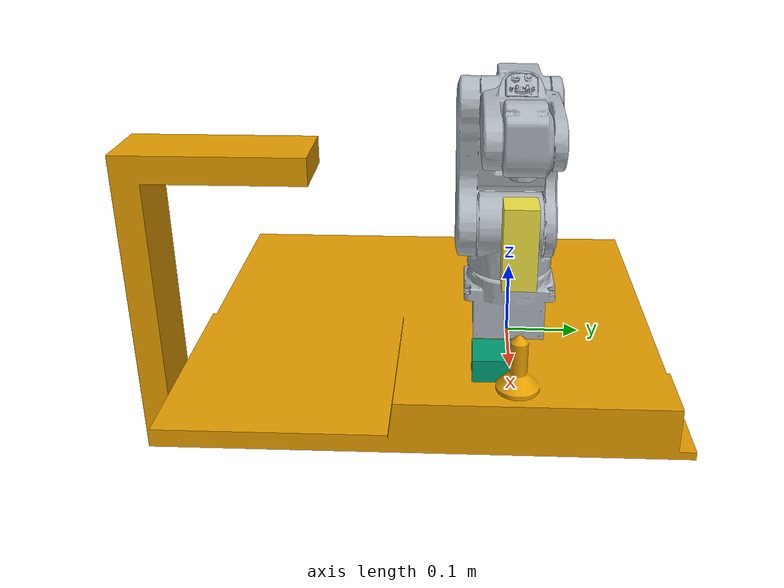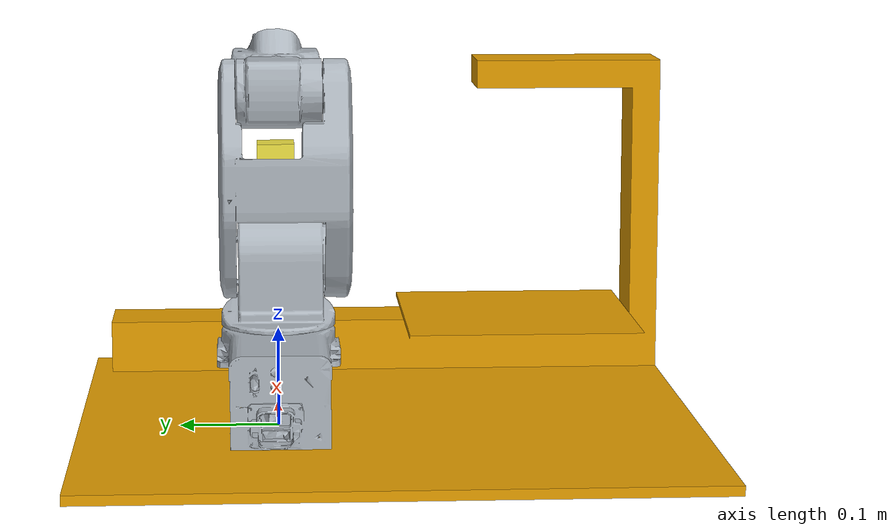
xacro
<?xml version="1.0" encoding="utf-8"?>
<robot name="motoman_motomini"
    xmlns:xacro="http://www.ros.org/wiki/xacro"
    xmlns:tesseract="http://ros.org/wiki/tesseract"
    tesseract:make_convex="true">

    <!-- ========= ARG FIRST ========= -->
    <xacro:arg name="controllers_file" default="" />
    <xacro:property name="controllers_file" value="$(arg controllers_file)" />
    <xacro:arg name="tool_type" default="gripper" />
    <xacro:property name="tool_type" value="$(arg tool_type)" />
    <!-- ========= INCLUDE ROBOT ========= -->
    <xacro:include filename="motoman_motomini.urdf" />
    <xacro:include filename="motoman_motomini_sensors.urdf.xacro" />
    <xacro:include filename="motoman_motomini_tool.xacro" />
    <!-- ========= TOOLS ========= -->
    <xacro:motomini_tool
        parent_link="tool0"
        tool_type="${tool_type}" />
    <!-- ========= WORLD FIX ========= -->
    <link name="world" />

    <joint name="world_to_workcell" type="fixed">
        <parent link="world" />
        <child link="workcell" />
        <origin xyz="0 0 0.068" rpy="0 0 0" />
    </joint>
    <gazebo reference="link_1_s">
        <turnGravityOff>true</turnGravityOff>
    </gazebo>

    <gazebo reference="link_2_l">
        <turnGravityOff>true</turnGravityOff>
    </gazebo>

    <gazebo reference="link_3_u">
        <turnGravityOff>true</turnGravityOff>
    </gazebo>

    <gazebo reference="link_4_r">
        <turnGravityOff>true</turnGravityOff>
    </gazebo>

    <gazebo reference="link_5_b">
        <turnGravityOff>true</turnGravityOff>
    </gazebo>

    <gazebo reference="link_6_t">
        <turnGravityOff>true</turnGravityOff>
    </gazebo>
    <!-- =============== ROS2 CONTROL ===================== -->

    <ros2_control name="MotominiSystem" type="system">
        <hardware>
            <plugin>gz_ros2_control/GazeboSimSystem</plugin>

            <!-- These control Gazebo internal PID -->
            <param name="position_proportional_gain">5000.0</param>
            <param name="position_derivative_gain">50.0</param>

        </hardware>

        <!-- Position control only (simple mode) -->

        <joint name="joint_1_s">
            <command_interface name="position" />
            <state_interface name="position" />
            <state_interface name="velocity" />
        </joint>

        <joint name="joint_2_l">
            <command_interface name="position" />
            <state_interface name="position" />
            <state_interface name="velocity" />
        </joint>

        <joint name="joint_3_u">
            <command_interface name="position" />
            <state_interface name="position" />
            <state_interface name="velocity" />
        </joint>

        <joint name="joint_4_r">
            <command_interface name="position" />
            <state_interface name="position" />
            <state_interface name="velocity" />
        </joint>

        <joint name="joint_5_b">
            <command_interface name="position" />
            <state_interface name="position" />
            <state_interface name="velocity" />
        </joint>

        <joint name="joint_6_t">
            <command_interface name="position" />
            <state_interface name="position" />
            <state_interface name="velocity" />
        </joint>

    </ros2_control>

    <!-- ============== GAZEBO SETTINGS =================== -->

    <gazebo>
        <gravity>false</gravity>
        <plugin
            filename="libgz_ros2_control-system.so"
            name="gz_ros2_control::GazeboSimROS2ControlPlugin">
            <parameters>${controllers_file}</parameters>
        </plugin>
    </gazebo>

</robot>

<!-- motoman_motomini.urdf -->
<robot name="motoman_motomini">
  <!--Generated by RobotCAD, a ROS
  Workbench for FreeCAD (https://github.com/drfenixion/freecad.robotcad)-->
  <link name="workcell">
    <visual>
      <!--visual_world_/Body.-->
      <origin rpy="0 0 0" xyz="0.0 0.0 0.0" />
      <geometry>
        <mesh filename="package://motomini/meshes/workcell.stl" scale="0.001 0.001 0.001"/>
      </geometry>
    </visual>
    <collision>
      <!--col__world__col_Body__BoundBox/col_Body__BoundBox.-->
      <origin rpy="0 0 0" xyz="0.0 0.0 0.0" />
      <geometry>
        <mesh filename="package://motomini/meshes/workcell.stl" scale="0.001 0.001 0.001"/>
      </geometry>
    </collision>

    <inertial>
      <mass value="1.0" />
      <origin xyz="0 0 0" rpy="0 0 0" />
      <inertia ixx="0.01" ixy="0" ixz="0"
        iyy="0.01" iyz="0"
        izz="0.01" />
    </inertial>
  </link>
  <link name="base_link">
    <visual>
      <!--visual_base_link_/base_link_visual.-->
      <origin rpy="0 0 0" xyz="0.0 0.0 0.0" />
      <geometry>
        <mesh filename="package://motomini/meshes/motomini_ws_base_link_stl_xcag4w.dae" />
      </geometry>
    </visual>
    <collision>
      <!--col_base_link_/base_link_collision.-->
      <origin rpy="0 0 0" xyz="0.0 0.0 0.0" />
      <geometry>
        <mesh filename="package://motomini/meshes/motomini_ws_base_link_stl003_aoewun.dae" />
      </geometry>
    </collision>
    <inertial>
      <mass value="0.2957730208625907" />
      <origin rpy="0 0 0" xyz="-0.0414482 0.000680426 -0.00874207" />
      <inertia ixx="0.0006002993385117529" ixy="1.838905003866756e-05" ixz="-0.00013458983394770842"
        iyy="0.0015926668546347553" iyz="5.833475687390483e-06" izz="0.0017336952882501457" />
    </inertial>
  </link>
  <link name="link_1_s">
    <visual>
      <!--visual_link_1_s_/link_1_s_visual.-->
      <origin rpy="0 0 0" xyz="0.0 0.0 0.0" />
      <geometry>
        <mesh filename="package://motomini/meshes/motomini_ws_link_1_s_stl_6j3ein.dae" />
      </geometry>
    </visual>
    <collision>
      <!--col_link_1_s_/link_1_s_collision.-->
      <origin rpy="0 0 0" xyz="0.0 0.0 0.0" />
      <geometry>
        <mesh filename="package://motomini/meshes/motomini_ws_link_1_s_stl003_zj3crt.dae" />
      </geometry>
    </collision>
    <inertial>
      <mass value="0.2702445975347093" />
      <origin rpy="0 0 0" xyz="0.0117154 -0.0180822 -0.0325725" />
      <inertia ixx="0.0006643318166600817" ixy="3.170457948367218e-05" ixz="-9.752049469525281e-05"
        iyy="0.0006007029484641133" iyz="0.00012827517242338014" izz="0.00035835381021736434" />
    </inertial>
  </link>
  <link name="link_2_l">
    <visual>
      <!--visual_link_2_l_/link_2_l_visual.-->
      <origin rpy="1.5707963267948963 0 0" xyz="0.0 0.0 0.0" />
      <geometry>
        <mesh filename="package://motomini/meshes/motomini_ws_link_2_l_stl_ywjtlh.dae" />
      </geometry>
    </visual>
    <collision>
      <!--col_link_2_l_/link_2_l_collision.-->
      <origin rpy="1.5707963267948963 0 0" xyz="0.0 0.0 0.0" />
      <geometry>
        <mesh filename="package://motomini/meshes/motomini_ws_link_2_l_stl003_eufvko.dae" />
      </geometry>
    </collision>
    <inertial>
      <mass value="0.3645826896823147" />
      <origin rpy="1.5707963267948963 0 0" xyz="-0.0156956 -0.0821106 -0.0337352" />
      <inertia ixx="0.0022003462775989032" ixy="4.319294351144581e-05" ixz="-7.19893676187331e-06"
        iyy="0.0017133333321486747" iyz="-4.3796511719310283e-07" izz="0.000985045151194613" />
    </inertial>
  </link>
  <link name="link_3_u">
    <visual>
      <!--visual_link_3_u_/link_3_u_visual.-->
      <origin rpy="-1.5707963267948963 0 0" xyz="0.0 0.0 0.0" />
      <geometry>
        <mesh filename="package://motomini/meshes/motomini_ws_link_3_u_stl_ctpkcv.dae" />
      </geometry>
    </visual>
    <collision>
      <!--col_link_3_u_/link_3_u_collision.-->
      <origin rpy="-1.5707963267948963 0 0" xyz="0.0 0.0 0.0" />
      <geometry>
        <mesh filename="package://motomini/meshes/motomini_ws_link_3_u_stl003_8rwhjh.dae" />
      </geometry>
    </collision>
    <inertial>
      <mass value="0.06604462857575186" />
      <origin rpy="-1.5707963267948963 0 0" xyz="-0.0201924 0.00307167 0.00747611" />
      <inertia ixx="9.024297182188324e-05" ixy="1.5062846502783997e-05" ixz="5.527414281744643e-06"
        iyy="0.00011008351228415944" iyz="-2.08099229137512e-06" izz="0.00011641933903730871" />
    </inertial>
  </link>
  <link name="link_4_r">
    <visual>
      <!--visual_link_4_r_/link_4_r_visual.-->
      <origin rpy="0 1.5707963267948963 0" xyz="0.0 0.0 0.0" />
      <geometry>
        <mesh filename="package://motomini/meshes/motomini_ws_link_4_r_stl_uyj2fm.dae" />
      </geometry>
    </visual>
    <collision>
      <!--col_link_4_r_/link_4_r_collision.-->
      <origin rpy="0 1.5707963267948963 0" xyz="0.0 0.0 0.0" />
      <geometry>
        <mesh filename="package://motomini/meshes/motomini_ws_link_4_r_stl003_hecj6j.dae" />
      </geometry>
    </collision>
    <inertial>
      <mass value="0.1515950382190257" />
      <origin rpy="0 1.5707963267948963 0" xyz="0.00176097 -0.00433646 0.0689076" />
      <inertia ixx="0.0002244294991985835" ixy="-2.486252165081103e-05" ixz="4.258142439233098e-06"
        iyy="0.0003795137970997391" iyz="-1.2479435307808937e-06" izz="0.00044070388252848093" />
    </inertial>
  </link>
  <link name="link_5_b">
    <visual>
      <!--visual_link_5_b_/link_5_b_visual.-->
      <origin rpy="-1.5707963267948963 0 0" xyz="0.0 0.0 0.0" />
      <geometry>
        <mesh filename="package://motomini/meshes/motomini_ws_link_5_b_stl_ua8fpz.dae" />
      </geometry>
    </visual>
    <collision>
      <!--col_link_5_b_/link_5_b_collision.-->
      <origin rpy="-1.5707963267948963 0 0" xyz="0.0 0.0 0.0" />
      <geometry>
        <mesh filename="package://motomini/meshes/motomini_ws_link_5_b_stl003_o97hcc.dae" />
      </geometry>
    </collision>
    <inertial>
      <mass value="0.06591984342973066" />
      <origin rpy="-1.5707963267948963 0 0" xyz="-0.000826461 0.00149217 -0.000326558" />
      <inertia ixx="5.8054972443508276e-05" ixy="4.639714220595164e-07" ixz="-9.053608175882721e-07"
        iyy="6.295802222323531e-05" iyz="-1.511995758590539e-07" izz="5.283862172663218e-05" />
    </inertial>
  </link>
  <link name="link_6_t">
    <visual>
      <!--visual_link_6_t_/link_6_t_visual.-->
      <origin rpy="0 0 0" xyz="0.0 0.0 0.0" />
      <geometry>
        <mesh filename="package://motomini/meshes/motomini_ws_link_6_t_stl_m29b2l.dae" />
      </geometry>
    </visual>
    <collision>
      <!--col_link_6_t_/link_6_t_collision.-->
      <origin rpy="0 0 0" xyz="0.0 0.0 0.0" />
      <geometry>
        <mesh filename="package://motomini/meshes/motomini_ws_link_6_t_stl003_onpr9a.dae" />
      </geometry>
    </collision>
    <inertial>
      <mass value="0.01309057837623762" />
      <origin rpy="0 0 0" xyz="0.0 0.0 -0.0299851" />
      <inertia ixx="1.132968895272913e-06" ixy="-5.878942424433416e-11" ixz="4.499033128730112e-10"
        iyy="1.1328302839738658e-06" iyz="6.331380453074025e-11" izz="1.5026821447063523e-06" />
    </inertial>
  </link>
  <link name="tool0" />
  <link name="base" />
  <joint name="workcell_joint" type="fixed">
    <parent link="workcell" />
    <child link="base_link" />
    <origin rpy="0 0 0" xyz="0.0 0.0 0.0" />
  </joint>
  <joint name="joint_1_s" type="revolute">
    <parent link="base_link" />
    <child link="link_1_s" />
    <origin rpy="0 0 0" xyz="0.0 0.0 0.103" />
    <axis xyz="0 0 1" />
    <limit effort="50.0" lower="-2.967" upper="2.967" velocity="0.5" />
  </joint>
  <joint name="joint_2_l" type="revolute">
    <parent link="link_1_s" />
    <child link="link_2_l" />
    <origin rpy="-1.5707963267948963 0 0" xyz="0.02 0.0 0.0" />
    <axis xyz="0 0 1" />
    <limit effort="50.0" lower="-1.4835" upper="1.5707" velocity="0.5" />
  </joint>
  <joint name="joint_3_u" type="revolute">
    <parent link="link_2_l" />
    <child link="link_3_u" />
    <origin rpy="3.1415926535897927 0 0" xyz="0.0 -0.165 0.0" />
    <axis xyz="0 0 1" />
    <limit effort="50.0" lower="-0.8726" upper="1.5707" velocity="0.5" />
  </joint>
  <joint name="joint_4_r" type="revolute">
    <parent link="link_3_u" />
    <child link="link_4_r" />
    <origin rpy="-1.570796326794897 0 1.5707963267948966" xyz="0.165 0.0 0.0" />
    <axis xyz="0 0 1" />
    <limit effort="50.0" lower="-2.4434" upper="2.4434" velocity="0.5" />
  </joint>
  <joint name="joint_5_b" type="revolute">
    <parent link="link_4_r" />
    <child link="link_5_b" />
    <origin rpy="1.5707963267948966 1.5707963267948966 0" xyz="0.0 0.0 0.0" />
    <axis xyz="0 0 1" />
    <limit effort="50.0" lower="-0.5235" upper="3.6651" velocity="0.5" />
  </joint>
  <joint name="joint_6_t" type="revolute">
    <parent link="link_5_b" />
    <child link="link_6_t" />
    <origin rpy="-1.5707963267948963 0 0" xyz="0.0 0.0 0.0" />
    <axis xyz="0 0 1" />
    <limit effort="50.0" lower="-6.2831" upper="6.2831" velocity="0.5" />
  </joint>
  <joint name="joint_6_t-tool0" type="fixed">
    <parent link="link_6_t" />
    <child link="tool0" />
    <origin rpy="3.1415926499999998 0 0" xyz="0.0 0.0 -0.04" />
  </joint>
  <joint name="base_link-base" type="fixed">
    <parent link="base_link" />
    <child link="base" />
    <origin rpy="0 0 0" xyz="0.0 0.0 0.103" />
  </joint>
</robot>

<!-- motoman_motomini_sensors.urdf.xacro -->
<robot xmlns:xacro="http://www.ros.org/wiki/xacro">
    <link name="world_depth_camera_link">
        <visual>
            <geometry>
                <box size="0.05 0.05 0.05" />
            </geometry>
        </visual>
        <inertial>
            <mass value="0.1" />
            <origin xyz="0 0 0" />
            <inertia ixx="0.001" ixy="0" ixz="0"
                iyy="0.001" iyz="0"
                izz="0.001" />
        </inertial>
    </link>
    <joint name="world_depth_camera_joint" type="fixed">
        <parent link="workcell" />
        <child link="world_depth_camera_link" />
        <origin xyz="0.212 -0.027 0.0" rpy="0 0 1.57142857143" />

    </joint>

    <gazebo reference="world_depth_camera_link">
        <sensor name="realsense_d435" type="rgbd_camera">
            <topic>camera</topic>

            <frame_id>world_depth_camera_link</frame_id>
            <ignition_frame_id>world_depth_camera_link</ignition_frame_id>

            <update_rate>30</update_rate>
            <camera name="d435">
                <horizontal_fov>1.5184</horizontal_fov>
                <vertical_fov>1.0123</vertical_fov>
                <image>
                    <width>640</width>
                    <height>480</height>
                    <format>R8G8B8</format>
                </image>
                <clip>
                    <near>0.2</near>
                    <far>10.0</far>
                </clip>
            </camera>
            <always_on>1</always_on>
            <visualize>true</visualize>
        </sensor>
    </gazebo>

    <gazebo reference="world_range_link">
        <sensor name="distance_sensor" type="gpu_lidar">
            <topic>distance_sensor/scan</topic>
            <update_rate>20</update_rate>
            <ray>
                <scan>
                    <horizontal>
                        <samples>1</samples>
                        <min_angle>0</min_angle>
                        <max_angle>0</max_angle>
                    </horizontal>
                </scan>
                <range>
                    <min>0.05</min>
                    <max>5.0</max>
                </range>
            </ray>
            <always_on>true</always_on>
            <visualize>true</visualize>
        </sensor>
    </gazebo>
    <gazebo>
        <plugin filename="libignition-gazebo-sensors-system.so"
            name="ignition::gazebo::systems::Sensors">
            <render_engine>ogre2</render_engine>
        </plugin>
    </gazebo>
</robot>

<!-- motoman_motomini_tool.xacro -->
<robot xmlns:xacro="http://www.ros.org/wiki/xacro">

  <!-- TOOL MACRO -->
  <xacro:macro name="motomini_tool" params="parent_link tool_type">

    <!-- ========== GRIPPER ========== -->
    <xacro:if value="${tool_type == 'gripper'}">

      <link name="gripper_link">
        <visual>
          <geometry>
            <box size="0.04 0.04 0.1" />
          </geometry>
        </visual>
        <collision>
          <geometry>
            <box size="0.04 0.04 0.1" />
          </geometry>
        </collision>
        <inertial>
          <mass value="0.3" />
          <inertia ixx="0.001" iyy="0.001" izz="0.001"
            ixy="0" ixz="0" iyz="0" />
        </inertial>
      </link>

      <joint name="tool_joint" type="fixed">
        <parent link="${parent_link}" />
        <child link="gripper_link" />
        <origin xyz="0 0 0.08" rpy="0 0 0" />
      </joint>

    </xacro:if>

    <!-- =========== CAMERA ========== -->
    <xacro:if value="${tool_type == 'camera'}">

      <link name="camera_link">
        <visual>
          <geometry>
            <cylinder radius="0.02" length="0.05" />
          </geometry>
        </visual>
      </link>

      <joint name="tool_joint" type="fixed">
        <parent link="${parent_link}" />
        <child link="camera_link" />
        <origin xyz="0 0 0.06" rpy="0 0 0" />
      </joint>

    </xacro:if>

    <xacro:if value="${tool_type == 'magnetic'}">

      <link name="magnetic_link">
        <visual>
          <!--visual_world_/Body.-->
          <origin rpy="0 0 0" xyz="0.0 0.0 -0.045" />
          <geometry>
            <mesh filename="package://motomini/meshes/tool-magnetic.dae" />
          </geometry>
        </visual>
        <collision>
          <!--col__world__col_Body__BoundBox/col_Body__BoundBox.-->
          <origin rpy="0 0 0" xyz="0.0 0.0 -0.045" />
          <geometry>
            <mesh filename="package://motomini/meshes/tool-magnetic.dae" />
          </geometry>
        </collision>

        <inertial>
          <mass value="1.0" />
          <origin xyz="0 0 0" rpy="0 0 0" />
          <inertia ixx="0.01" ixy="0" ixz="0"
            iyy="0.01" iyz="0"
            izz="0.01" />
        </inertial>
      </link>

      <joint name="tool_joint" type="fixed">
        <parent link="${parent_link}" />
        <child link="magnetic_link" />
        <origin xyz="0 0 0.045" rpy="0 0 0" />
      </joint>

    </xacro:if>

    <xacro:if value="${tool_type == 'calib'}">

      <link name="calib_link">
        <visual>
          <!--visual_world_/Body.-->
          <origin rpy="0 0.0 0" xyz="0.0 0.0 0.012" />
          <geometry>
            <mesh filename="package://motomini/meshes/calib_tool2.stl" scale="0.001 0.001 0.001" />
          </geometry>
        </visual>
        <collision>
          <!--col__world__col_Body__BoundBox/col_Body__BoundBox.-->
          <origin rpy="0 0 0" xyz="0.0 0.0 0.012" />
          <geometry>
            <mesh filename="package://motomini/meshes/calib_tool2.stl" scale="0.001 0.001 0.001" />
          </geometry>
        </collision>

        <inertial>
          <mass value="1.0" />
          <origin xyz="0 0 0" rpy="0 0 0" />
          <inertia ixx="0.01" ixy="0" ixz="0"
            iyy="0.01" iyz="0"
            izz="0.01" />
        </inertial>
      </link>

      <joint name="tool_joint" type="fixed">
        <parent link="${parent_link}" />
        <child link="calib_link" />
        <origin xyz="0.0145 0.0 0.0455" rpy="-1.57 0 1.57" />
      </joint>
    </xacro:if>
  </xacro:macro>

</robot>
